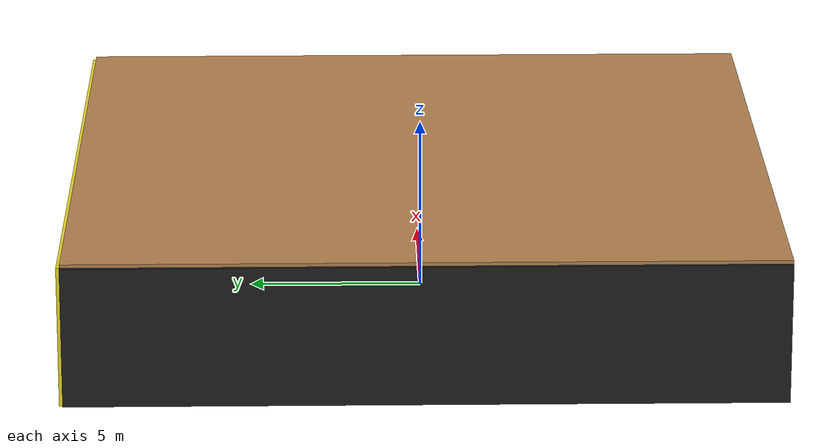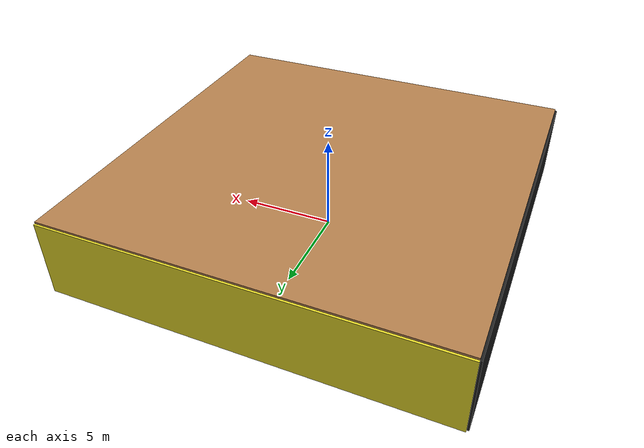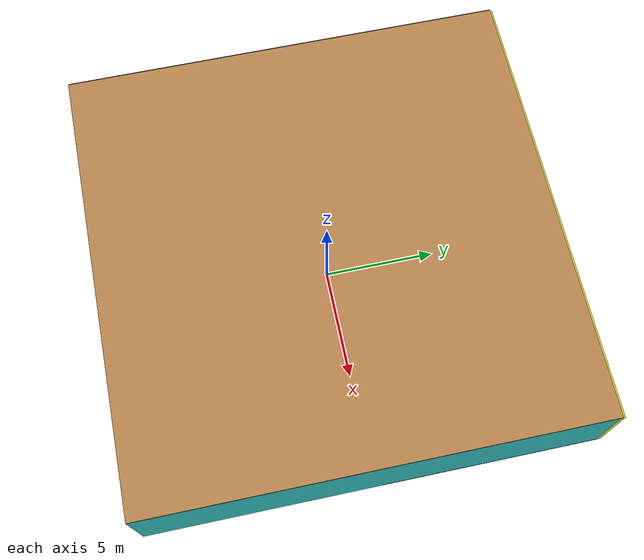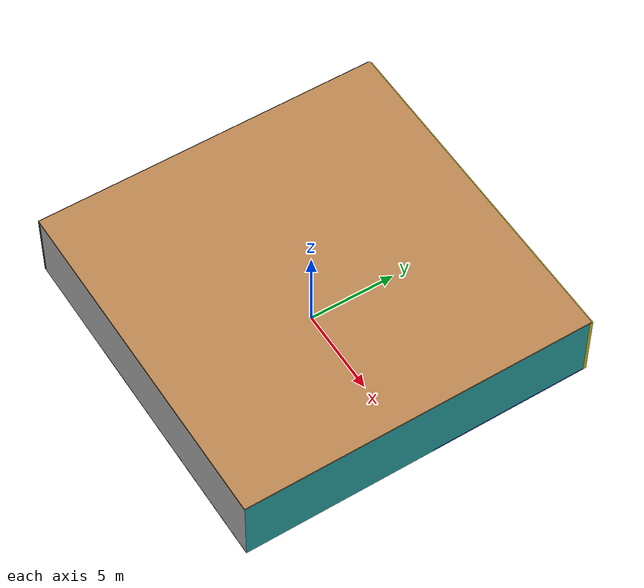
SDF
<sdf version="1.4">
 <world name="default">
  <physics type="ode">
   <max_step_size>0.001</max_step_size>
   <real_time_factor>1</real_time_factor>
   <real_time_update_rate>1000</real_time_update_rate>
   <gravity>0 0 -9.8</gravity>
  </physics>
  <scene><ambient>0.4 0.4 0.4 1</ambient><background>0.7 0.7 0.7 1</background><shadows>1</shadows></scene>
  <model name="Surrounding">
   <static>1</static>
   <link name="Ceiling">
    <collision name="Ceiling_Collision"><geometry><box><size>20 20 0.1</size></box></geometry></collision>
    <visual name="Ceiling_Visual">
     <geometry><box><size>20 20 0.1</size></box></geometry>
     <material>
      <script><uri>file://media/materials/scripts/gazebo.material</uri><name>Gazebo/WoodPallet</name></script>
     </material>
    </visual>
    <pose>0 0 4.05 0 0 0</pose>
   </link>
   <link name="Wall_South">
    <collision name="Wall_South_Collision">
     <geometry><box><size>20 0 4</size></box></geometry>
     <pose>0 0 2 0 -0 0</pose>
    </collision>
    <visual name="Wall_South_Visual">
     <pose>0 0 2 0 -0 0</pose>
     <geometry><box><size>20 0 4</size></box></geometry>
     <material>
      <script><uri>file://media/materials/scripts/gazebo.material</uri><name>Gazebo/Pioneer2Body</name></script>
     </material>
    </visual>
    <velocity_decay><linear>0</linear><angular>0</angular></velocity_decay>
    <pose>0 -10 0 0 -0 0</pose>
   </link>
   <link name="Wall_East">
    <collision name="Wall_21_Collision">
     <geometry><box><size>20 0 4</size></box></geometry>
     <pose>0 0 2 0 -0 0</pose>
    </collision>
    <visual name="Wall_21_Visual">
     <pose>0 0 2 0 -0 0</pose>
     <geometry><box><size>20 0 4</size></box></geometry>
     <material>
      <script>
       <uri>file://media/materials/scripts/gazebo.material</uri>
       <name>Gazebo/TurquoiseGlowOutline</name>
      </script>
     </material>
    </visual>
    <velocity_decay><linear>0</linear><angular>0</angular></velocity_decay>
    <pose>10 0 0 0 -0 1.5708</pose>
   </link>
   <link name="Wall_North">
    <collision name="Wall_22_Collision">
     <geometry><box><size>20 0.2 4</size></box></geometry>
     <pose>0 0 2 0 -0 0</pose>
    </collision>
    <visual name="Wall_22_Visual">
     <pose>0 0 2 0 -0 0</pose>
     <geometry><box><size>20 0.2 4</size></box></geometry>
     <material>
      <script><uri>file://media/materials/scripts/gazebo.material</uri><name>Gazebo/YellowGlow</name></script>
     </material>
    </visual>
    <velocity_decay><linear>0</linear><angular>0</angular></velocity_decay>
    <pose>0 10 0 0 -0 0</pose>
   </link>
   <link name="Wall_West">
    <collision name="Wall_23_Collision">
     <geometry><box><size>20 0.2 4</size></box></geometry>
     <pose>0 0 2 0 -0 0</pose>
    </collision>
    <visual name="Wall_23_Visual">
     <pose>0 0 2 0 -0 0</pose>
     <geometry><box><size>20 0.2 4</size></box></geometry>
     <material>
      <script><uri>file://media/materials/scripts/gazebo.material</uri><name>Gazebo/FlatBlack</name></script>
     </material>
    </visual>
    <velocity_decay><linear>0</linear><angular>0</angular></velocity_decay>
    <pose>-10 0 0 0 0 -1.5708</pose>
   </link>
   <link name="Ground_link">
    <collision name="collision">
     <pose>0 0 .05 0 -0 0</pose>
     <geometry><box><size>20 20 0.1</size></box></geometry>
    </collision>
    <visual name="visual">
     <pose>0 0 .05 0 -0 0</pose>
     <geometry><box><size>20 20 0.1</size></box></geometry>
     <material>
      <script><uri>file://media/materials/scripts/gazebo.material</uri><name>Gazebo/BlueGlow</name></script>
     </material>
    </visual>
   </link>
   <static>1</static>
  </model>
  <spherical_coordinates>
   <surface_model>EARTH_WGS84</surface_model>
   <latitude_deg>0</latitude_deg>
   <longitude_deg>0</longitude_deg>
   <elevation>0</elevation>
   <heading_deg>0</heading_deg>
  </spherical_coordinates>
  <light name="lightball_0" type="diffuse">
   <diffuse>0.8 0.8 0.8 1</diffuse>
   <specular>0.2 0.2 0.2 1</specular>
   <attenuation>
    <range>100</range>
    <constant>0.7</constant>
    <linear>0.01</linear>
    <quadratic>0.001</quadratic>
   </attenuation>
   <direction>-0.5 0.1 -0.9</direction>
   <pose>8.77342085319 3.27362421772 1.77459861611 0 0 0</pose>
  </light>
  <light name="lightball_1" type="diffuse">
   <diffuse>0.8 0.8 0.8 1</diffuse>
   <specular>0.2 0.2 0.2 1</specular>
   <attenuation>
    <range>100</range>
    <constant>0.7</constant>
    <linear>0.01</linear>
    <quadratic>0.001</quadratic>
   </attenuation>
   <direction>-0.5 0.1 -0.9</direction>
   <pose>0.413524756842 -6.42784998087 1.33803810433 0 0 0</pose>
  </light>
  <light name="lightball_2" type="diffuse">
   <diffuse>0.8 0.8 0.8 1</diffuse>
   <specular>0.2 0.2 0.2 1</specular>
   <attenuation>
    <range>100</range>
    <constant>0.7</constant>
    <linear>0.01</linear>
    <quadratic>0.001</quadratic>
   </attenuation>
   <direction>-0.5 0.1 -0.9</direction>
   <pose>8.34025669278 0.722437569368 1.64937186904 0 0 0</pose>
  </light>
  <light name="lightball_3" type="diffuse">
   <diffuse>0.8 0.8 0.8 1</diffuse>
   <specular>0.2 0.2 0.2 1</specular>
   <attenuation>
    <range>100</range>
    <constant>0.7</constant>
    <linear>0.01</linear>
    <quadratic>0.001</quadratic>
   </attenuation>
   <direction>-0.5 0.1 -0.9</direction>
   <pose>-8.87149915237 9.08926682047 0.992883923773 0 0 0</pose>
  </light>
  <light name="lightball_4" type="diffuse">
   <diffuse>0.8 0.8 0.8 1</diffuse>
   <specular>0.2 0.2 0.2 1</specular>
   <attenuation>
    <range>100</range>
    <constant>0.7</constant>
    <linear>0.01</linear>
    <quadratic>0.001</quadratic>
   </attenuation>
   <direction>-0.5 0.1 -0.9</direction>
   <pose>-7.13289214569 9.08725949249 2.14376716968 0 0 0</pose>
  </light>
  <light name="lightball_5" type="diffuse">
   <diffuse>0.8 0.8 0.8 1</diffuse>
   <specular>0.2 0.2 0.2 1</specular>
   <attenuation>
    <range>100</range>
    <constant>0.7</constant>
    <linear>0.01</linear>
    <quadratic>0.001</quadratic>
   </attenuation>
   <direction>-0.5 0.1 -0.9</direction>
   <pose>-5.92243085109 9.73520243547 1.7381257664 0 0 0</pose>
  </light>
  <light name="lightball_6" type="diffuse">
   <diffuse>0.8 0.8 0.8 1</diffuse>
   <specular>0.2 0.2 0.2 1</specular>
   <attenuation>
    <range>100</range>
    <constant>0.7</constant>
    <linear>0.01</linear>
    <quadratic>0.001</quadratic>
   </attenuation>
   <direction>-0.5 0.1 -0.9</direction>
   <pose>7.05969499964 -8.33742587172 3.76817827854 0 0 0</pose>
  </light>
  <light name="lightball_7" type="diffuse">
   <diffuse>0.8 0.8 0.8 1</diffuse>
   <specular>0.2 0.2 0.2 1</specular>
   <attenuation>
    <range>100</range>
    <constant>0.7</constant>
    <linear>0.01</linear>
    <quadratic>0.001</quadratic>
   </attenuation>
   <direction>-0.5 0.1 -0.9</direction>
   <pose>7.97721184373 -1.5073401293 1.99877187635 0 0 0</pose>
  </light>
  <include><uri>model://cabinet</uri><pose>-7.24078084199 4.49154888007 0 0 0 2.83479913518</pose></include>
  <include><uri>model://table</uri><pose>-4.33976928387 2.29879031839 0 0 0 2.11223431587</pose></include>
  <include><uri>model://table</uri><pose>-3.99933026461 5.0207345983 0 0 0 1.09748298181</pose></include>
  <include><uri>model://cabinet</uri><pose>5.21669215251 4.49376425998 0 0 0 2.20465730162</pose></include>
  <include><uri>model://cabinet</uri><pose>8.12085858638 0.709131489524 0 0 0 2.30451272284</pose></include>
  <include>
   <uri>model://robocup_3Dsim_goal</uri>
   <pose>6.914341868 7.42050220612 0 0 0 2.04747962552</pose>
  </include>
 </world>
</sdf>

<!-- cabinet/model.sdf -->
<sdf version="1.5">
  <model name="cabinet">
    <static>true</static>
    <link name="cabinet_bottom_plate">
      <inertial>
        <pose>0 0 -1 0 0 0</pose>
        <inertia>
          <ixx>2.050000</ixx>
          <ixy>0</ixy>
          <ixz>0</ixz>
          <iyy>2.050000</iyy>
          <iyz>0</iyz>
          <izz>2.050000</izz>
        </inertia>
        <mass>25.000000</mass>
      </inertial>
      <collision name="cabinet_bottom_plate_geom">
        <pose>0 0 0.010000 0 0 0</pose>
        <geometry>
          <box>
            <size>0.450000 0.450000 0.020000</size>
          </box>
        </geometry>
      </collision>
      <visual name="cabinet_bottom_plate_geom_visual">
        <pose>0 0 0.010000 0 0 0</pose>
        <geometry>
          <box>
            <size>0.450000 0.450000 0.020000</size>
          </box>
        </geometry>
        <material>
          <script>
            <uri>model://media/materials/scripts/gazebo.material</uri>
            <name>Gazebo/Wood</name>
          </script>
        </material>
      </visual>
      <collision name="cabinet_bottom_plate_geom_cabinet_back_plate">
        <pose>0.235000 0 0.510000 0 0 0</pose>
        <geometry>
          <box>
            <size>0.020000 0.450000 1.020000</size>
          </box>
        </geometry>
      </collision>
      <visual name="cabinet_bottom_plate_geom_cabinet_back_plate_visual">
        <pose>0.235000 0 0.510000 0 0 0</pose>
        <geometry>
          <box>
            <size>0.020000 0.450000 1.020000</size>
          </box>
        </geometry>
        <material>
          <script>
            <uri>model://media/materials/scripts/gazebo.material</uri>
            <name>Gazebo/Wood</name>
          </script>
        </material>
      </visual>
      <collision name="cabinet_bottom_plate_geom_cabinet_left_plate">
        <pose>0 0.235000 0.510000 0 0 0</pose>
        <geometry>
          <box>
            <size>0.450000 0.020000 1.020000</size>
          </box>
        </geometry>
      </collision>
      <visual name="cabinet_bottom_plate_geom_cabinet_left_plate_visual">
        <pose>0 0.235000 0.510000 0 0 0</pose>
        <geometry>
          <box>
            <size>0.450000 0.020000 1.020000</size>
          </box>
        </geometry>
        <material>
          <script>
            <uri>model://media/materials/scripts/gazebo.material</uri>
            <name>Gazebo/Wood</name>
          </script>
        </material>
      </visual>
      <collision name="cabinet_bottom_plate_geom_cabinet_middle_plate">
        <pose>0 0 0.510000 0 0 0</pose>
        <geometry>
          <box>
            <size>0.450000 0.450000 0.020000</size>
          </box>
        </geometry>
      </collision>
      <visual name="cabinet_bottom_plate_geom_cabinet_middle_plate_visual">
        <pose>0 0 0.510000 0 0 0</pose>
        <geometry>
          <box>
            <size>0.450000 0.450000 0.020000</size>
          </box>
        </geometry>
        <material>
          <script>
            <uri>model://media/materials/scripts/gazebo.material</uri>
            <name>Gazebo/Wood</name>
          </script>
        </material>
      </visual>
      <collision name="cabinet_bottom_plate_geom_cabinet_right_plate">
        <pose>0 -0.235000 0.510000 0 0 0</pose>
        <geometry>
          <box>
            <size>0.450000 0.020000 1.020000</size>
          </box>
        </geometry>
      </collision>
      <visual name="cabinet_bottom_plate_geom_cabinet_right_plate_visual">
        <pose>0 -0.235000 0.510000 0 0 0</pose>
        <geometry>
          <box>
            <size>0.450000 0.020000 1.020000</size>
          </box>
        </geometry>
        <material>
          <script>
            <uri>model://media/materials/scripts/gazebo.material</uri>
            <name>Gazebo/Wood</name>
          </script>
        </material>
      </visual>
      <collision name="cabinet_bottom_plate_geom_cabinet_top_plate">
        <pose>0 0 1.010000 0 0 0</pose>
        <geometry>
          <box>
            <size>0.450000 0.450000 0.020000</size>
          </box>
        </geometry>
      </collision>
      <visual name="cabinet_bottom_plate_geom_cabinet_top_plate_visual">
        <pose>0 0 1.010000 0 0 0</pose>
        <geometry>
          <box>
            <size>0.450000 0.450000 0.020000</size>
          </box>
        </geometry>
        <material>
          <script>
            <uri>model://media/materials/scripts/gazebo.material</uri>
            <name>Gazebo/Wood</name>
          </script>
        </material>
      </visual>
    </link>
  </model>
</sdf>

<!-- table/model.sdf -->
<sdf version="1.5">
  <model name="table">
    <static>true</static>
    <link name="link">
      <collision name="surface">
        <pose>0 0 1.0 0 0 0</pose>
        <geometry>
          <box>
            <size>1.5 0.8 0.03</size>
          </box>
        </geometry>
        <surface>
          <friction>
            <ode>
              <mu>0.6</mu>
              <mu2>0.6</mu2>
            </ode>
          </friction>
        </surface>
      </collision>
      <visual name="visual1">
        <pose>0 0 1.0 0 0 0</pose>
        <geometry>
          <box>
            <size>1.5 0.8 0.03</size>
          </box>
        </geometry>
        <material>
          <script>
            <uri>model://media/materials/scripts/gazebo.material</uri>
            <name>Gazebo/Wood</name>
          </script>
        </material>
      </visual>
      <collision name="front_left_leg">
        <pose>0.68 0.38 0.5 0 0 0</pose>
        <geometry>
          <cylinder>
            <radius>0.02</radius>
            <length>1.0</length>
          </cylinder>
        </geometry>
      </collision>
      <visual name="front_left_leg">
        <pose>0.68 0.38 0.5 0 0 0</pose>
        <geometry>
          <cylinder>
            <radius>0.02</radius>
            <length>1.0</length>
          </cylinder>
        </geometry>
        <material>
          <script>
            <uri>model://media/materials/scripts/gazebo.material</uri>
            <name>Gazebo/Grey</name>
          </script>
        </material>
      </visual>
      <collision name="front_right_leg">
        <pose>0.68 -0.38 0.5 0 0 0</pose>
        <geometry>
          <cylinder>
            <radius>0.02</radius>
            <length>1.0</length>
          </cylinder>
        </geometry>
      </collision>
      <visual name="front_right_leg">
        <pose>0.68 -0.38 0.5 0 0 0</pose>
        <geometry>
          <cylinder>
            <radius>0.02</radius>
            <length>1.0</length>
          </cylinder>
        </geometry>
        <material>
          <script>
            <uri>model://media/materials/scripts/gazebo.material</uri>
            <name>Gazebo/Grey</name>
          </script>
        </material>
      </visual>
      <collision name="back_right_leg">
        <pose>-0.68 -0.38 0.5 0 0 0</pose>
        <geometry>
          <cylinder>
            <radius>0.02</radius>
            <length>1.0</length>
          </cylinder>
        </geometry>
      </collision>
      <visual name="back_right_leg">
        <pose>-0.68 -0.38 0.5 0 0 0</pose>
        <geometry>
          <cylinder>
            <radius>0.02</radius>
            <length>1.0</length>
          </cylinder>
        </geometry>
        <material>
          <script>
            <uri>model://media/materials/scripts/gazebo.material</uri>
            <name>Gazebo/Grey</name>
          </script>
        </material>
      </visual>
      <collision name="back_left_leg">
        <pose>-0.68 0.38 0.5 0 0 0</pose>
        <geometry>
          <cylinder>
            <radius>0.02</radius>
            <length>1.0</length>
          </cylinder>
        </geometry>
      </collision>
      <visual name="back_left_leg">
        <pose>-0.68 0.38 0.5 0 0 0</pose>
        <geometry>
          <cylinder>
            <radius>0.02</radius>
            <length>1.0</length>
          </cylinder>
        </geometry>
        <material>
          <script>
            <uri>model://media/materials/scripts/gazebo.material</uri>
            <name>Gazebo/Grey</name>
          </script>
        </material>
      </visual>
    </link>
  </model>
</sdf>

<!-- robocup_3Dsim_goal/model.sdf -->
<sdf version="1.5">
  <model name="robocup_3d_goal">
    <static>true</static>
    <link name="left_post">
      <pose>0 1.05 0.45 0 0 0</pose>
      <collision name="collision">
        <geometry>
          <cylinder>
            <radius>0.05</radius>
            <length>0.9</length>
          </cylinder>
        </geometry>
      </collision>
      <visual name="visual">
        <geometry>
          <cylinder>
            <radius>0.05</radius>
            <length>0.9</length>
          </cylinder>
        </geometry>
        <material>
          <script>
            <uri>file://media/materials/scripts/gazebo.material</uri>
            <name>Gazebo/ZincYellow</name>
          </script>
        </material>
      </visual>
    </link>
    <link name="left_support_horiz_lower">
      <pose>0.30 1.05 0.01 0 0 0</pose>
      <collision name="collision">
        <geometry>
          <box>
            <size>0.50 0.02 0.02</size>
          </box>
        </geometry>
      </collision>
      <visual name="visual">
        <geometry>
          <box>
            <size>0.50 0.02 0.02</size>
          </box>
        </geometry>
        <material>
          <script>
            <uri>file://media/materials/scripts/gazebo.material</uri>
            <name>Gazebo/White</name>
          </script>
        </material>
      </visual>
    </link>
    <link name="left_support_horiz_upper">
      <pose>0.30 1.05 0.79 0 0 0</pose>
      <collision name="collision">
        <geometry>
          <box>
            <size>0.50 0.02 0.02</size>
          </box>
        </geometry>
      </collision>
      <visual name="visual">
        <geometry>
          <box>
            <size>0.50 0.02 0.02</size>
          </box>
        </geometry>
        <material>
          <script>
            <uri>file://media/materials/scripts/gazebo.material</uri>
            <name>Gazebo/White</name>
          </script>
        </material>
      </visual>
    </link>
    <link name="left_support_vertical">
      <pose>0.56 1.05 0.4 0 1.5708 0</pose>
      <collision name="collision">
        <geometry>
          <box>
            <size>0.80 0.02 0.02</size>
          </box>
        </geometry>
      </collision>
      <visual name="visual">
        <geometry>
          <box>
            <size>0.80 0.02 0.02</size>
          </box>
        </geometry>
        <material>
          <script>
            <uri>file://media/materials/scripts/gazebo.material</uri>
            <name>Gazebo/White</name>
          </script>
        </material>
      </visual>
    </link>
    <link name="right_support_horiz_lower">
      <pose>0.30 -1.05 0.01 0 0 0</pose>
      <collision name="collision">
        <geometry>
          <box>
            <size>0.50 0.02 0.02</size>
          </box>
        </geometry>
      </collision>
      <visual name="visual">
        <geometry>
          <box>
            <size>0.50 0.02 0.02</size>
          </box>
        </geometry>
        <material>
          <script>
            <uri>file://media/materials/scripts/gazebo.material</uri>
            <name>Gazebo/White</name>
          </script>
        </material>
      </visual>
    </link>
    <link name="right_support_horiz_upper">
      <pose>0.30 -1.05 0.79 0 0 0</pose>
      <collision name="collision">
        <geometry>
          <box>
            <size>0.50 0.02 0.02</size>
          </box>
        </geometry>
      </collision>
      <visual name="visual">
        <geometry>
          <box>
            <size>0.50 0.02 0.02</size>
          </box>
        </geometry>
        <material>
          <script>
            <uri>file://media/materials/scripts/gazebo.material</uri>
            <name>Gazebo/White</name>
          </script>
        </material>
      </visual>
    </link>
    <link name="right_support_vertical">
      <pose>0.56 -1.05 0.4 0 1.5708 0</pose>
      <collision name="collision">
        <geometry>
          <box>
            <size>0.80 0.02 0.02</size>
          </box>
        </geometry>
      </collision>
      <visual name="visual">
        <geometry>
          <box>
            <size>0.80 0.02 0.02</size>
          </box>
        </geometry>
        <material>
          <script>
            <uri>file://media/materials/scripts/gazebo.material</uri>
            <name>Gazebo/White</name>
          </script>
        </material>
      </visual>
    </link>
    <link name="center_support_horiz_lower">
      <pose>0.56 0 0.01 0 1.5708 0</pose>
      <collision name="collision">
        <geometry>
          <box>
            <size>0.02 2.08 0.02</size>
          </box>
        </geometry>
      </collision>
      <visual name="visual">
        <geometry>
          <box>
            <size>0.02 2.08 0.02</size>
          </box>
        </geometry>
        <material>
          <script>
            <uri>file://media/materials/scripts/gazebo.material</uri>
            <name>Gazebo/White</name>
          </script>
        </material>
      </visual>
    </link>
    <link name="center_support_horiz_upper">
      <pose>0.56 0 0.79 0 1.5708 0</pose>
      <collision name="collision">
        <geometry>
          <box>
            <size>0.02 2.08 0.02</size>
          </box>
        </geometry>
      </collision>
      <visual name="visual">
        <geometry>
          <box>
            <size>0.02 2.08 0.02</size>
          </box>
        </geometry>
        <material>
          <script>
            <uri>file://media/materials/scripts/gazebo.material</uri>
            <name>Gazebo/White</name>
          </script>
        </material>
      </visual>
    </link>
    <link name="right_post">
      <pose>0 -1.05 0.45 0 0 0</pose>
      <collision name="collision">
        <geometry>
          <cylinder>
            <radius>0.05</radius>
            <length>0.9</length>
          </cylinder>
        </geometry>
      </collision>
      <visual name="visual">
        <geometry>
          <cylinder>
            <radius>0.05</radius>
            <length>0.9</length>
          </cylinder>
        </geometry>
        <material>
          <script>
            <uri>file://media/materials/scripts/gazebo.material</uri>
            <name>Gazebo/ZincYellow</name>
          </script>
        </material>
      </visual>
    </link>
    <link name="crossbar">
      <pose>0 0 0.85 1.57 1.57 0</pose>
      <collision name="collision">
        <geometry>
          <cylinder>
            <radius>0.05</radius>
            <length>2.0</length>
          </cylinder>
        </geometry>
      </collision>
      <visual name="visual">
        <geometry>
          <cylinder>
            <radius>0.05</radius>
            <length>2.0</length>
          </cylinder>
        </geometry>
        <material>
          <script>
            <uri>file://media/materials/scripts/gazebo.material</uri>
            <name>Gazebo/ZincYellow</name>
          </script>
        </material>
      </visual>
    </link>
    <link name="center_net">
      <pose>0.56 0 0.40 0 0 0</pose>
      <collision name="collision">
        <geometry>
          <box>
            <size>0.01 2.1 0.80</size>
          </box>
        </geometry>
      </collision>
      <visual name="visual">
        <geometry>
          <box>
            <size>0.01 2.1 0.80</size>
          </box>
        </geometry>
        <material>
          <script>
            <uri>model://../model_source/models/robocup09_spl_field/materials/scripts/</uri>
            <uri>model://../model_source/models/robocup09_spl_field/materials/textures/</uri>
            <name>RoboCup/Net</name>
          </script>
        </material>
      </visual>
    </link>
    <link name="left_net">
      <pose>0.30 1.05 0.40 0 0 0</pose>
      <collision name="collision">
        <geometry>
          <box>
            <size>0.50 0.01 0.76</size>
          </box>
        </geometry>
      </collision>
      <visual name="visual">
        <geometry>
          <box>
            <size>0.50 0.01 0.76</size>
          </box>
        </geometry>
        <material>
          <script>
            <uri>model://../model_source/models/robocup09_spl_field/materials/scripts/</uri>
            <uri>model://../model_source/models/robocup09_spl_field/materials/textures/</uri>
            <name>RoboCup/Net</name>
          </script>
        </material>
      </visual>
    </link>
    <link name="right_net">
      <pose>0.30 -1.05 0.40 0 0 0</pose>
      <collision name="collision">
        <geometry>
          <box>
            <size>0.50 0.01 0.76</size>
          </box>
        </geometry>
      </collision>
      <visual name="visual">
        <geometry>
          <box>
            <size>0.50 0.01 0.76</size>
          </box>
        </geometry>
        <material>
          <script>
            <uri>model://../model_source/models/robocup09_spl_field/materials/scripts/</uri>
            <uri>model://../model_source/models/robocup09_spl_field/materials/textures/</uri>
            <name>RoboCup/Net</name>
          </script>
        </material>
      </visual>
    </link>
  </model>
</sdf>
